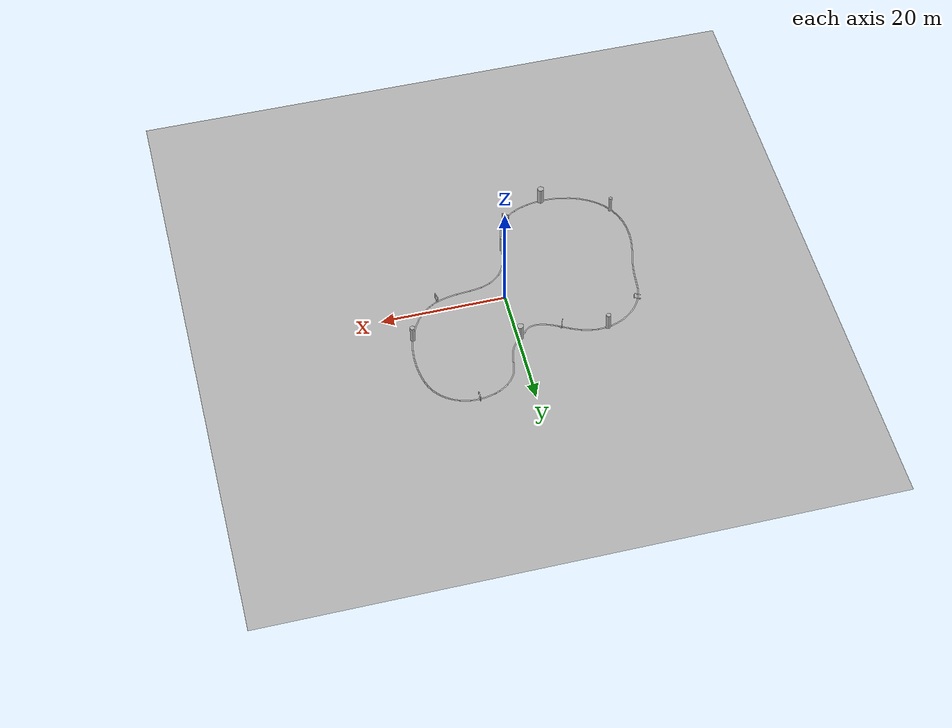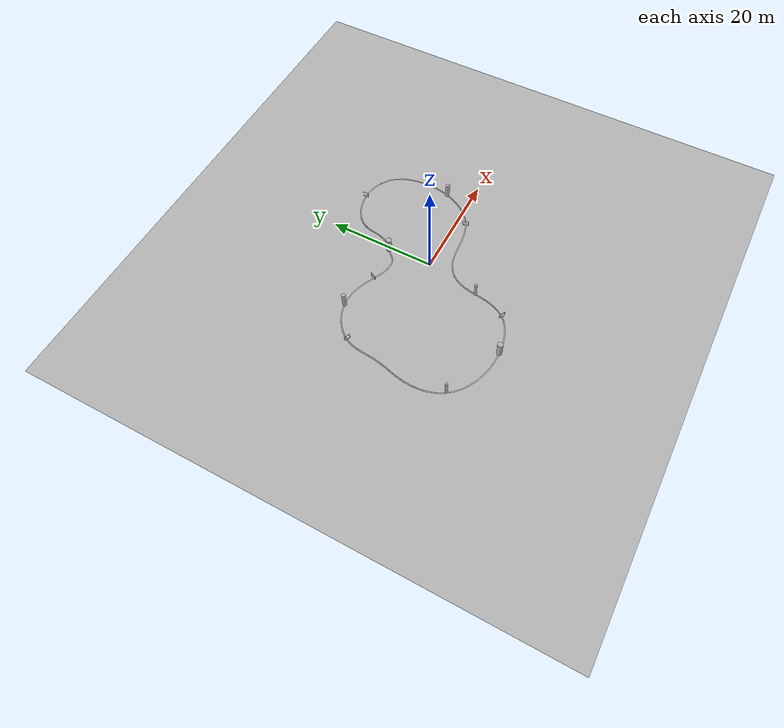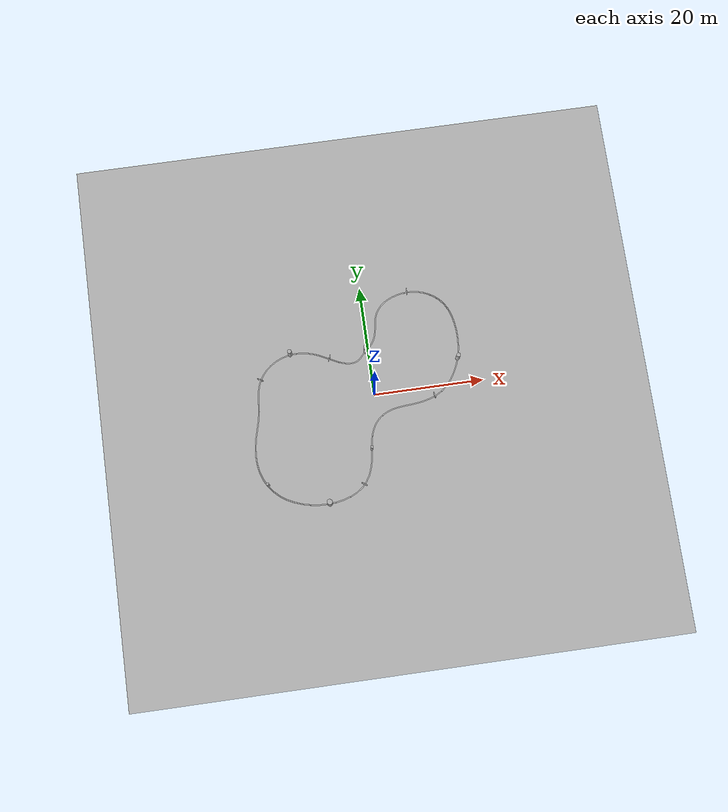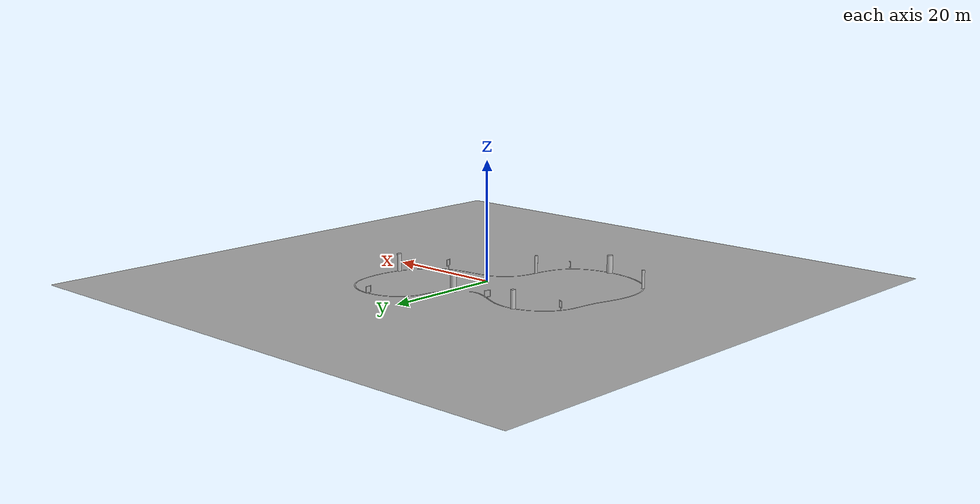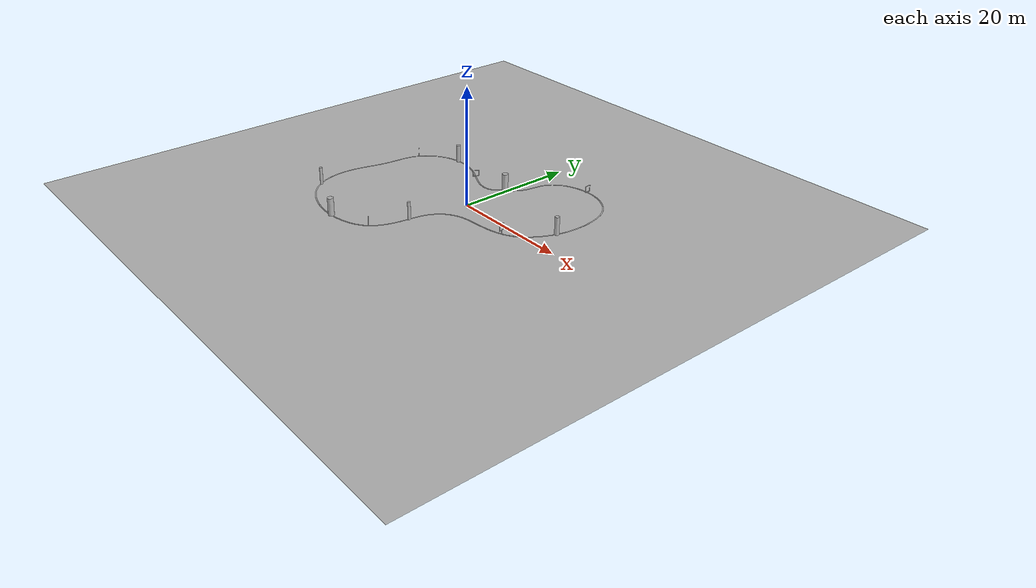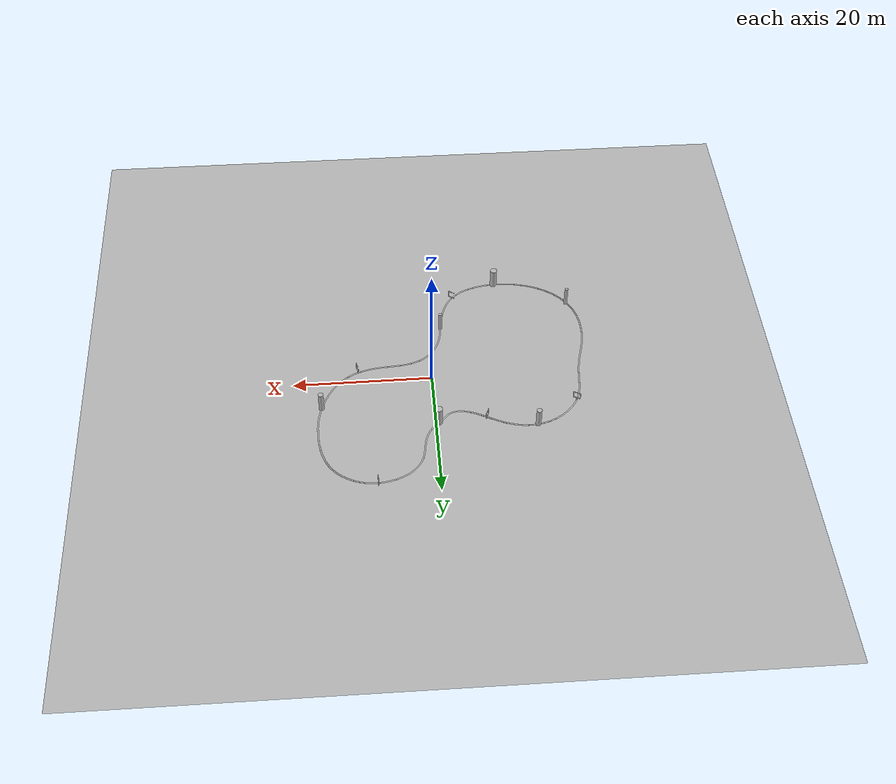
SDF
<sdf version="1.5">
 <world name="default">
  <physics type="ode">
   <max_step_size>0.004</max_step_size>
   <real_time_factor>1.0</real_time_factor>
   <real_time_update_rate>250</real_time_update_rate>
  </physics>
  <plugin name="gz::sim::systems::Physics" filename="gz-sim-physics-system"/>
  <plugin name="gz::sim::systems::UserCommands" filename="gz-sim-user-commands-system"/>
  <plugin name="gz::sim::systems::SceneBroadcaster" filename="gz-sim-scene-broadcaster-system"/>
  <plugin name="gz::sim::systems::Contact" filename="gz-sim-contact-system"/>
  <plugin name="gz::sim::systems::Imu" filename="gz-sim-imu-system"/>
  <plugin name="gz::sim::systems::AirPressure" filename="gz-sim-air-pressure-system"/>
  <plugin name="gz::sim::systems::ApplyLinkWrench" filename="gz-sim-apply-link-wrench-system"/>
  <plugin name="gz::sim::systems::NavSat" filename="gz-sim-navsat-system"/>
  <plugin name="gz::sim::systems::Sensors" filename="gz-sim-sensors-system">
   <render_engine>ogre2</render_engine>
  </plugin>
  <gravity>0 0 -9.8</gravity>
  <magnetic_field>6e-06 2.3e-05 -4.2e-05</magnetic_field>
  <atmosphere type="adiabatic"/>
  <scene>
   <grid>false</grid>
   <ambient>0.4 0.4 0.4 1</ambient>
   <background>0.7 0.7 0.7 1</background>
   <shadows>true</shadows>
  </scene>
  <spherical_coordinates>
   <surface_model>EARTH_WGS84</surface_model>
   <world_frame_orientation>ENU</world_frame_orientation>
   <latitude_deg>47.397971057728974</latitude_deg>
   <longitude_deg>8.546163739800146</longitude_deg>
   <elevation>0</elevation>
  </spherical_coordinates>
  <include><uri>model://sun</uri></include>
  <include><uri>model://ground_third</uri></include>
  <include><uri>model://road_2</uri><static>true</static></include>
  <include>
   <name>1cyl</name>
   <uri>model://cylinder_1</uri>
   <static>true</static>
   <pose>-10.63 -18.62 0 0 0 0</pose>
  </include>
  <include>
   <name>2cyl</name>
   <uri>model://cylinder_1</uri>
   <static>true</static>
   <pose>-0.41 8.27 0 0 0 0</pose>
  </include>
  <include>
   <name>3cyl</name>
   <uri>model://cylinder_0.5</uri>
   <static>true</static>
   <pose>-21.17 -13.919 0 0 0 0</pose>
  </include>
  <include>
   <name>4cyl</name>
   <uri>model://cylinder_0.5</uri>
   <static>true</static>
   <pose>-1.88 -9.93 0 0 0 0</pose>
  </include>
  <include>
   <name>5cyl</name>
   <uri>model://cylinder_0.75</uri>
   <static>true</static>
   <pose>15.99 4.57 0 0 0 0</pose>
  </include>
  <include>
   <name>6cyl</name>
   <uri>model://cylinder_0.75</uri>
   <static>true</static>
   <pose>-14.3 9.48 0 0 0 0</pose>
  </include>
  <include>
   <name>2frame</name>
   <uri>model://frame_1.2</uri>
   <static>true</static>
   <pose>-7.2792 7.681 0 0 0 2.750801</pose>
  </include>
  <include>
   <name>3frame</name>
   <uri>model://frame_1.2</uri>
   <static>true</static>
   <pose>-4.0561 -16.0751 0 0 0 0.971245</pose>
  </include>
  <include>
   <name>7frame</name>
   <uri>model://frame_1.8</uri>
   <static>true</static>
   <pose>10.7204 -1.8407 0 0 0 0.260014</pose>
  </include>
  <include>
   <name>8frame</name>
   <uri>model://frame_1.5</uri>
   <static>true</static>
   <pose>-20.2542 5.3696 0 0 0 -2.083714</pose>
  </include>
  <include>
   <name>10frame</name>
   <uri>model://frame_1</uri>
   <static>true</static>
   <pose>8.5252 18.3121 0 0 0 -3.092744</pose>
  </include>
  <include><uri>model://platform</uri><static>true</static><pose>-22.6515 -6.4665 0 0 0 1.44</pose></include>
 </world>
</sdf>

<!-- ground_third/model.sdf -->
<sdf version="1.5">
    <model name="ground">
        <static>true</static>
        <link name="link">
            <collision name="collision">
                <pose>0 0 0 0 0 0</pose>
                <geometry>
                    <mesh>
                        <uri>model://ground_third/meshes/ground.dae</uri>
                    </mesh>
                </geometry>
            </collision>
            <visual name="visual">

              <pose>0 0 0 0 0 0</pose>
              <geometry>
              <mesh>
                 <uri>model://ground_third/meshes/ground.dae</uri>
              </mesh>
              </geometry>
             </visual>
        </link>
    </model>
</sdf>

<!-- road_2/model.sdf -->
<sdf version="1.5">
    <model name="road">
        <static>true</static>
        <link name="link">
            <collision name="collision">
                <pose>0 0 0 0 0 0</pose>
                <geometry>
                    <mesh>
                        <uri>model://road_2/meshes/road_2.dae</uri>
                    </mesh>
                </geometry>
            </collision>
            <visual name="visual">

              <pose>0 0 0 0 0 0</pose>
              <geometry>
              <mesh>
                 <uri>model://road_2/meshes/road_2.dae</uri>
              </mesh>
              </geometry>
             </visual>
        </link>
    </model>
</sdf>

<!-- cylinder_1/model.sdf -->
<sdf version="1.5">
    <model name="cylinder_1">
        <static>true</static>
        <link name="link">
            <collision name="collision1">
                <pose>0 0 0 0 0 0</pose>
                <geometry>
                    <mesh>
                        <uri>model://cylinder_1/meshes/cylinder_1.stl</uri>
                    </mesh>
                </geometry>
            </collision>
            <visual name="visual1">

              <pose>0 0 0 0 0 0</pose>
              <geometry>
              <mesh>
                 <uri>model://cylinder_1/meshes/cylinder_1.dae</uri>
              </mesh>
              </geometry>
             </visual>
        </link>
    </model>
</sdf>

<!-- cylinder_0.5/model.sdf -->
<sdf version="1.5">
    <model name="cylinder_05">
        <static>true</static>
        <link name="link">
            <collision name="collision1">
                <pose>0 0 0 0 0 0</pose>
                <geometry>
                    <mesh>
                        <uri>model://cylinder_0.5/meshes/cylinder_0_5.stl</uri>
                    </mesh>
                </geometry>
            </collision>
            <visual name="visual1">

              <pose>0 0 0 0 0 0</pose>
              <geometry>
              <mesh>
                 <uri>model://cylinder_0.5/meshes/cylinder_0_5.dae</uri>
              </mesh>
              </geometry>
             </visual>
        </link>
    </model>
</sdf>

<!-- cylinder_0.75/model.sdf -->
<sdf version="1.5">
    <model name="cylinder_075">
        <static>true</static>
        <link name="link">
            <collision name="collision1">
                <pose>0 0 0 0 0 0</pose>
                <geometry>
                    <mesh>
                        <uri>model://cylinder_0.75/meshes/cylinder_0_75.stl</uri>
                    </mesh>
                </geometry>
            </collision>
            <visual name="visual1">

              <pose>0 0 0 0 0 0</pose>
              <geometry>
              <mesh>
                 <uri>model://cylinder_0.75/meshes/cylinder_0_75.dae</uri>
              </mesh>
              </geometry>
            </visual>

        </link>
    </model>
</sdf>

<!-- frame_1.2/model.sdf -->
<sdf version="1.5">
    <model name="frame_1_2">
        <static>true</static>
        <link name="link">
            <collision name="collision1">
                <pose>0 0 0 0 0 0</pose>
                <geometry>
                    <mesh>
                        <uri>model://frame_1.2/meshes/frame_1_2.dae</uri>
                    </mesh>
                </geometry>
            </collision>
            <visual name="visual1">

              <pose>0 0 0 0 0 0</pose>
              <geometry>
              <mesh>
                 <uri>model://frame_1.2/meshes/frame_1_2.dae</uri>
              </mesh>
              </geometry>
            </visual>
        </link>
    </model>
</sdf>

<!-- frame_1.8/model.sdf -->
<sdf version="1.5">
    <model name="frame_1_8">
        <static>true</static>
        <link name="link">
            <collision name="collision1">
                <pose>0 0 0 0 0 0</pose>
                <geometry>
                    <mesh>
                        <uri>model://frame_1.8/meshes/frame_1_8.dae</uri>
                    </mesh>
                </geometry>
            </collision>
            <visual name="visual1">

              <pose>0 0 0 0 0 0</pose>
              <geometry>
              <mesh>
                 <uri>model://frame_1.8/meshes/frame_1_8.dae</uri>
              </mesh>
              </geometry>
             </visual>
        </link>
    </model>
</sdf>

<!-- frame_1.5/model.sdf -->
<sdf version="1.5">
    <model name="frame_1_5">
        <static>true</static>
        <link name="link">
            <collision name="collision1">
                <pose>0 0 0 0 0 0</pose>
                <geometry>
                    <mesh>
                        <uri>model://frame_1.5/meshes/frame_1_5.dae</uri>
                    </mesh>
                </geometry>
            </collision>
            <visual name="visual1">

              <pose>0 0 0 0 0 0</pose>
              <geometry>
              <mesh>
                 <uri>model://frame_1.5/meshes/frame_1_5.dae</uri>
              </mesh>
              </geometry>
            </visual>
        </link>
    </model>
</sdf>

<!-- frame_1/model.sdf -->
<sdf version="1.5">
    <model name="frame_1">
        <static>true</static>
        <link name="link">
            <collision name="collision1">
                <pose>0 0 0 0 0 0</pose>
                <geometry>
                    <mesh>
                        <uri>model://frame_1/meshes/frame_1.stl</uri>
                    </mesh>
                </geometry>
            </collision>
            <visual name="visual1">

              <pose>0 0 0 0 0 0</pose>
              <geometry>
              <mesh>
                 <uri>model://frame_1/meshes/frame_1.dae</uri>
              </mesh>
              </geometry>
             </visual>
        </link>
    </model>
</sdf>

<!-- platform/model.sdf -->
<sdf version="1.6">
  <model name="platform">
    <static>false</static>
    <link name="dummy_upper"/>

    <joint name="world_joint" type="fixed">
      <parent>world</parent>
      <child>dummy_upper</child>
    </joint>
  </model>
</sdf>
